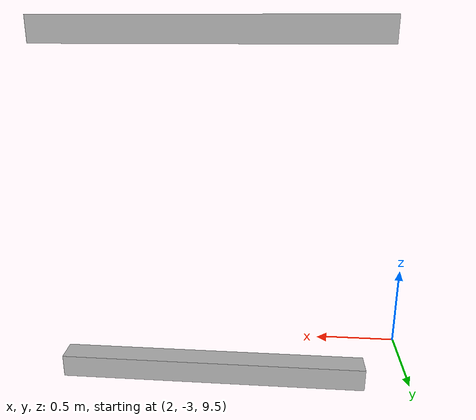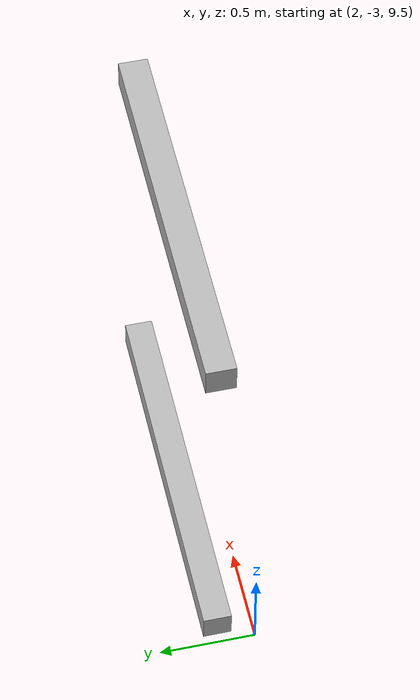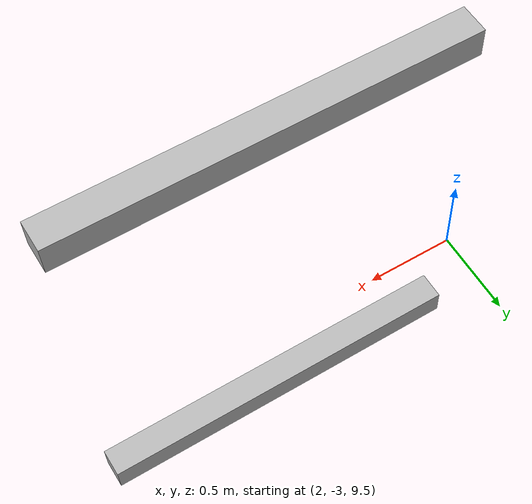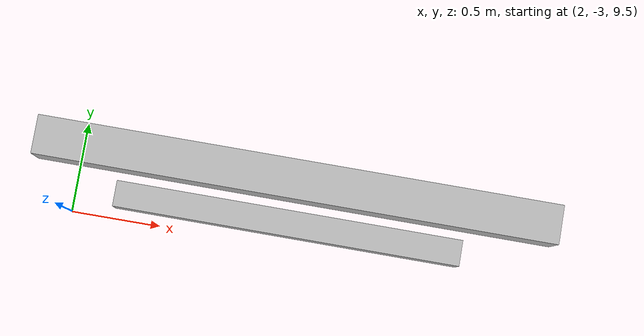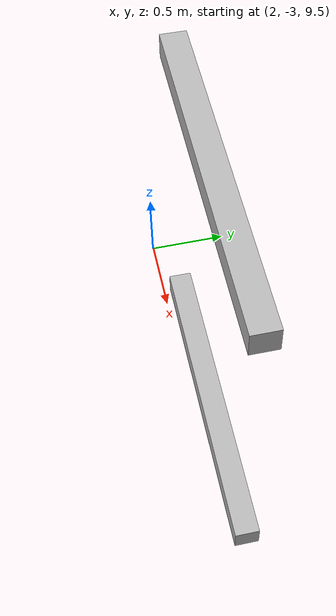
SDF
<sdf version="1.7">
 <world name="default">
  <model name="orthogonal_747_2.000.15_TS">
   <static>1</static>
   <link name="x_link_5_1_4">
    <inertial>
     <mass>1</mass>
     <inertia>
      <ixx>0.166667</ixx>
      <ixy>0</ixy>
      <ixz>0</ixz>
      <iyy>0.166667</iyy>
      <iyz>0</iyz>
      <izz>0.166667</izz>
     </inertia>
    </inertial>
    <pose>9.675 2.15 11.825 0 -0 0</pose>
    <visual name="visual_0">
     <laser_retro>4670</laser_retro>
     <geometry><box><size>2 1e-06 0.15</size></box></geometry>
     <material>
      <script><name>Gazebo/Grey</name><uri>file://media/materials/scripts/gazebo.material</uri></script>
      <shader type="pixel"><normal_map>__default__</normal_map></shader>
      <ambient>0.678 0.498 0.659 1</ambient>
      <diffuse>0.7 0.7 0.7 1</diffuse>
      <specular>0.01 0.01 0.01 1</specular>
      <emissive>0 0 0 1</emissive>
     </material>
     <pose>0 -0.075 0 0 -0 0</pose>
     <transparency>1</transparency>
    </visual>
    <visual name="visual_1">
     <laser_retro>4671</laser_retro>
     <geometry><box><size>2 1e-06 0.15</size></box></geometry>
     <material>
      <script><name>Gazebo/Grey</name><uri>file://media/materials/scripts/gazebo.material</uri></script>
      <shader type="pixel"><normal_map>__default__</normal_map></shader>
      <ambient>0.447 0.624 0.812 1</ambient>
      <diffuse>0.7 0.7 0.7 1</diffuse>
      <specular>0.01 0.01 0.01 1</specular>
      <emissive>0 0 0 1</emissive>
     </material>
     <pose>0 0.075 0 0 -0 0</pose>
     <transparency>1</transparency>
    </visual>
    <visual name="visual_2">
     <laser_retro>4672</laser_retro>
     <geometry><box><size>2 0.15 1e-06</size></box></geometry>
     <material>
      <script><name>Gazebo/Grey</name><uri>file://media/materials/scripts/gazebo.material</uri></script>
      <shader type="pixel"><normal_map>__default__</normal_map></shader>
      <ambient>0.988 0.686 0.243 1</ambient>
      <diffuse>0.7 0.7 0.7 1</diffuse>
      <specular>0.01 0.01 0.01 1</specular>
      <emissive>0 0 0 1</emissive>
     </material>
     <pose>0 0 -0.075 0 -0 0</pose>
     <transparency>1</transparency>
    </visual>
    <visual name="visual_3">
     <laser_retro>4673</laser_retro>
     <geometry><box><size>1e-06 0.15 0.15</size></box></geometry>
     <material>
      <script><name>Gazebo/Grey</name><uri>file://media/materials/scripts/gazebo.material</uri></script>
      <shader type="pixel"><normal_map>__default__</normal_map></shader>
      <ambient>0.988 0.914 0.31 1</ambient>
      <diffuse>0.7 0.7 0.7 1</diffuse>
      <specular>0.01 0.01 0.01 1</specular>
      <emissive>0 0 0 1</emissive>
     </material>
     <pose>1 0 0 0 -0 0</pose>
     <transparency>1</transparency>
    </visual>
    <visual name="visual_4">
     <laser_retro>4674</laser_retro>
     <geometry><box><size>2 0.15 1e-06</size></box></geometry>
     <material>
      <script><name>Gazebo/Grey</name><uri>file://media/materials/scripts/gazebo.material</uri></script>
      <shader type="pixel"><normal_map>__default__</normal_map></shader>
      <ambient>0.937 0.161 0.161 1</ambient>
      <diffuse>0.7 0.7 0.7 1</diffuse>
      <specular>0.01 0.01 0.01 1</specular>
      <emissive>0 0 0 1</emissive>
     </material>
     <pose>0 0 0.075 0 -0 0</pose>
     <transparency>1</transparency>
    </visual>
    <visual name="visual_5">
     <laser_retro>4675</laser_retro>
     <geometry><box><size>1e-06 0.15 0.15</size></box></geometry>
     <material>
      <script><name>Gazebo/Grey</name><uri>file://media/materials/scripts/gazebo.material</uri></script>
      <shader type="pixel"><normal_map>__default__</normal_map></shader>
      <ambient>0.541 0.886 0.204 1</ambient>
      <diffuse>0.7 0.7 0.7 1</diffuse>
      <specular>0.01 0.01 0.01 1</specular>
      <emissive>0 0 0 1</emissive>
     </material>
     <pose>-1 0 0 0 -0 0</pose>
     <transparency>1</transparency>
    </visual>
    <visual name="visual_texture">
     <geometry><box><size>1.9998 0.149985 0.149985</size></box></geometry>
     <material>
      <script>
       <uri>model://BASE_MODELS/simple_block_v2_textured/materials/scripts</uri>
       <uri>model://BASE_MODELS/simple_block_v2_textured/materials/textures</uri>
       <name>metal</name>
      </script>
     </material>
     <laser_retro>4676</laser_retro>
    </visual>
    <collision name="collision">
     <geometry><box><size>2 0.15 0.15</size></box></geometry>
     <surface>
      <friction>
       <ode><mu>1</mu><mu2>1</mu2><fdir1>0 0 0</fdir1><slip1>0</slip1><slip2>0</slip2></ode>
       <torsional>
        <coefficient>1</coefficient>
        <patch_radius>0</patch_radius>
        <surface_radius>0</surface_radius>
        <use_patch_radius>1</use_patch_radius>
        <ode><slip>0</slip></ode>
       </torsional>
      </friction>
      <bounce><restitution_coefficient>0</restitution_coefficient><threshold>1e+06</threshold></bounce>
      <contact>
       <collide_without_contact>0</collide_without_contact>
       <collide_without_contact_bitmask>1</collide_without_contact_bitmask>
       <collide_bitmask>1</collide_bitmask>
       <ode>
        <soft_cfm>0</soft_cfm>
        <soft_erp>0.2</soft_erp>
        <kp>1e+13</kp>
        <kd>1</kd>
        <max_vel>0.01</max_vel>
        <min_depth>0</min_depth>
       </ode>
       <bullet>
        <split_impulse>1</split_impulse>
        <split_impulse_penetration_threshold>-0.01</split_impulse_penetration_threshold>
        <soft_cfm>0</soft_cfm>
        <soft_erp>0.2</soft_erp>
        <kp>1e+13</kp>
        <kd>1</kd>
       </bullet>
      </contact>
     </surface>
    </collision>
   </link>
   <link name="x_link_6_1_4">
    <inertial>
     <mass>1</mass>
     <inertia>
      <ixx>0.166667</ixx>
      <ixy>0</ixy>
      <ixz>0</ixz>
      <iyy>0.166667</iyy>
      <iyz>0</iyz>
      <izz>0.166667</izz>
     </inertia>
    </inertial>
    <pose>9.675 2.15 13.975 0 -0 0</pose>
    <visual name="visual_0">
     <laser_retro>5594</laser_retro>
     <geometry><box><size>2 1e-06 0.15</size></box></geometry>
     <material>
      <script><name>Gazebo/Grey</name><uri>file://media/materials/scripts/gazebo.material</uri></script>
      <shader type="pixel"><normal_map>__default__</normal_map></shader>
      <ambient>0.678 0.498 0.659 1</ambient>
      <diffuse>0.7 0.7 0.7 1</diffuse>
      <specular>0.01 0.01 0.01 1</specular>
      <emissive>0 0 0 1</emissive>
     </material>
     <pose>0 -0.075 0 0 -0 0</pose>
     <transparency>1</transparency>
    </visual>
    <visual name="visual_1">
     <laser_retro>5595</laser_retro>
     <geometry><box><size>2 1e-06 0.15</size></box></geometry>
     <material>
      <script><name>Gazebo/Grey</name><uri>file://media/materials/scripts/gazebo.material</uri></script>
      <shader type="pixel"><normal_map>__default__</normal_map></shader>
      <ambient>0.447 0.624 0.812 1</ambient>
      <diffuse>0.7 0.7 0.7 1</diffuse>
      <specular>0.01 0.01 0.01 1</specular>
      <emissive>0 0 0 1</emissive>
     </material>
     <pose>0 0.075 0 0 -0 0</pose>
     <transparency>1</transparency>
    </visual>
    <visual name="visual_2">
     <laser_retro>5596</laser_retro>
     <geometry><box><size>2 0.15 1e-06</size></box></geometry>
     <material>
      <script><name>Gazebo/Grey</name><uri>file://media/materials/scripts/gazebo.material</uri></script>
      <shader type="pixel"><normal_map>__default__</normal_map></shader>
      <ambient>0.988 0.686 0.243 1</ambient>
      <diffuse>0.7 0.7 0.7 1</diffuse>
      <specular>0.01 0.01 0.01 1</specular>
      <emissive>0 0 0 1</emissive>
     </material>
     <pose>0 0 -0.075 0 -0 0</pose>
     <transparency>1</transparency>
    </visual>
    <visual name="visual_3">
     <laser_retro>5597</laser_retro>
     <geometry><box><size>1e-06 0.15 0.15</size></box></geometry>
     <material>
      <script><name>Gazebo/Grey</name><uri>file://media/materials/scripts/gazebo.material</uri></script>
      <shader type="pixel"><normal_map>__default__</normal_map></shader>
      <ambient>0.988 0.914 0.31 1</ambient>
      <diffuse>0.7 0.7 0.7 1</diffuse>
      <specular>0.01 0.01 0.01 1</specular>
      <emissive>0 0 0 1</emissive>
     </material>
     <pose>1 0 0 0 -0 0</pose>
     <transparency>1</transparency>
    </visual>
    <visual name="visual_4">
     <laser_retro>5598</laser_retro>
     <geometry><box><size>2 0.15 1e-06</size></box></geometry>
     <material>
      <script><name>Gazebo/Grey</name><uri>file://media/materials/scripts/gazebo.material</uri></script>
      <shader type="pixel"><normal_map>__default__</normal_map></shader>
      <ambient>0.937 0.161 0.161 1</ambient>
      <diffuse>0.7 0.7 0.7 1</diffuse>
      <specular>0.01 0.01 0.01 1</specular>
      <emissive>0 0 0 1</emissive>
     </material>
     <pose>0 0 0.075 0 -0 0</pose>
     <transparency>1</transparency>
    </visual>
    <visual name="visual_5">
     <laser_retro>5599</laser_retro>
     <geometry><box><size>1e-06 0.15 0.15</size></box></geometry>
     <material>
      <script><name>Gazebo/Grey</name><uri>file://media/materials/scripts/gazebo.material</uri></script>
      <shader type="pixel"><normal_map>__default__</normal_map></shader>
      <ambient>0.541 0.886 0.204 1</ambient>
      <diffuse>0.7 0.7 0.7 1</diffuse>
      <specular>0.01 0.01 0.01 1</specular>
      <emissive>0 0 0 1</emissive>
     </material>
     <pose>-1 0 0 0 -0 0</pose>
     <transparency>1</transparency>
    </visual>
    <visual name="visual_texture">
     <geometry><box><size>1.9998 0.149985 0.149985</size></box></geometry>
     <material>
      <script>
       <uri>model://BASE_MODELS/simple_block_v2_textured/materials/scripts</uri>
       <uri>model://BASE_MODELS/simple_block_v2_textured/materials/textures</uri>
       <name>metal</name>
      </script>
     </material>
     <laser_retro>5600</laser_retro>
    </visual>
    <collision name="collision">
     <geometry><box><size>2 0.15 0.15</size></box></geometry>
     <surface>
      <friction>
       <ode><mu>1</mu><mu2>1</mu2><fdir1>0 0 0</fdir1><slip1>0</slip1><slip2>0</slip2></ode>
       <torsional>
        <coefficient>1</coefficient>
        <patch_radius>0</patch_radius>
        <surface_radius>0</surface_radius>
        <use_patch_radius>1</use_patch_radius>
        <ode><slip>0</slip></ode>
       </torsional>
      </friction>
      <bounce><restitution_coefficient>0</restitution_coefficient><threshold>1e+06</threshold></bounce>
      <contact>
       <collide_without_contact>0</collide_without_contact>
       <collide_without_contact_bitmask>1</collide_without_contact_bitmask>
       <collide_bitmask>1</collide_bitmask>
       <ode>
        <soft_cfm>0</soft_cfm>
        <soft_erp>0.2</soft_erp>
        <kp>1e+13</kp>
        <kd>1</kd>
        <max_vel>0.01</max_vel>
        <min_depth>0</min_depth>
       </ode>
       <bullet>
        <split_impulse>1</split_impulse>
        <split_impulse_penetration_threshold>-0.01</split_impulse_penetration_threshold>
        <soft_cfm>0</soft_cfm>
        <soft_erp>0.2</soft_erp>
        <kp>1e+13</kp>
        <kd>1</kd>
       </bullet>
      </contact>
     </surface>
    </collision>
   </link>
   <pose>-6.47624 -5 -2.5 0 -0 0</pose>
  </model>
 </world>
</sdf>
